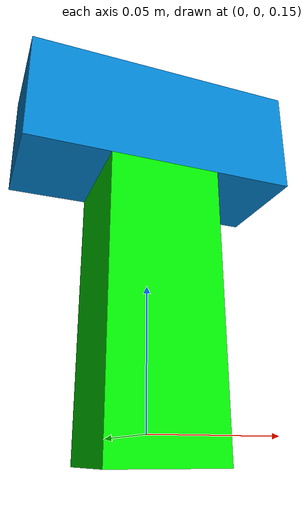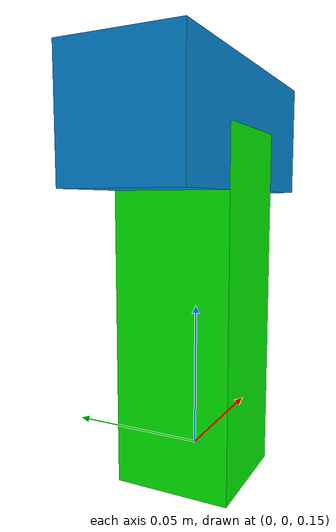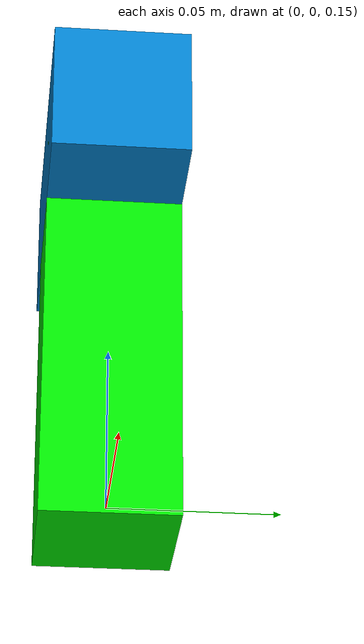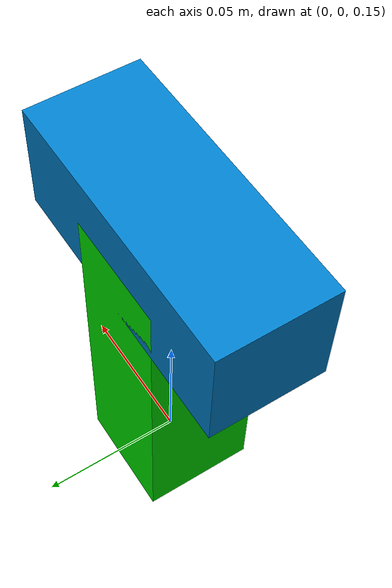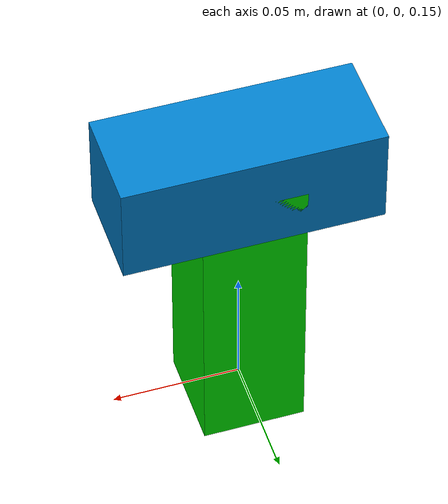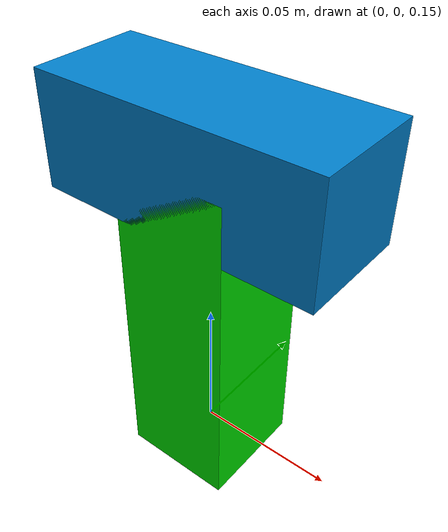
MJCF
<mujoco model="t_object_example">
  <asset>
    <!-- Optional: define materials here -->
  </asset>

  <worldbody>
    <!-- Free-floating T-shaped object -->
    <body name="t_object" pos="0 0 0.2">
      <joint type="free"/>

      <!-- Vertical part of T -->
      <geom name="t_vert"
            type="box"
            size="0.02 0.02 0.06"
            pos="0 0 0"
            rgba="0 0.9 0 1"
            friction="0.5 0.002 0.0001"/>

      <!-- Horizontal top part of T -->
      <geom name="t_horiz"
            type="box"
            size="0.05 0.02 0.02"
            pos="0 0 0.06"
            rgba="0 0.5 0.8 1"
            friction="0.5 0.002 0.0001"/>

      <!-- Reference site at center of object -->
      <site name="obj_frame"
            pos="0 0 0"
            size="0.02"
            rgba="1 0 0 1"/>
    </body>
  </worldbody>

  <option timestep="0.002" gravity="0 0 -9.81"/>
</mujoco>
